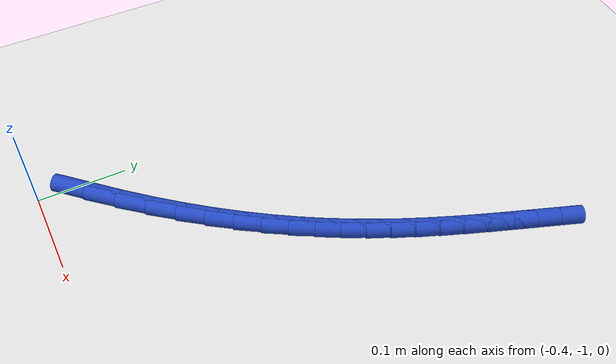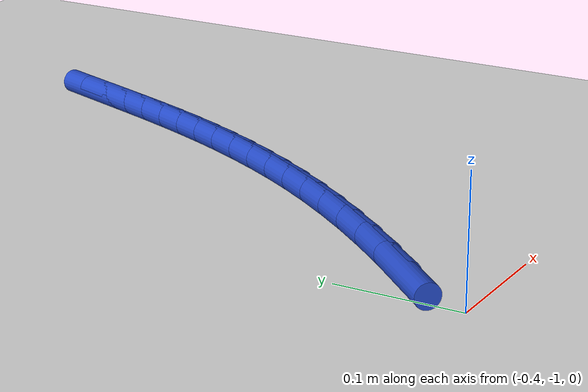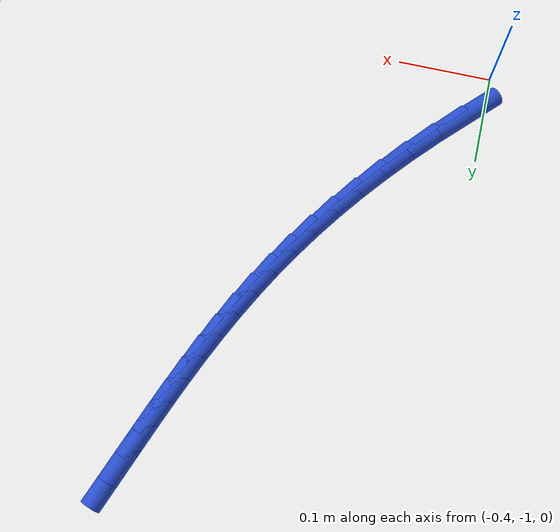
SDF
<sdf version="1.6">
 <world name="default">
  <model name="ground_plane">
   <static>1</static>
   <link name="link">
    <collision name="collision">
     <geometry><plane><normal>0 0 1</normal><size>100 100</size></plane></geometry>
     <surface><friction><ode><mu>100</mu><mu2>50</mu2></ode></friction></surface>
    </collision>
    <visual name="visual">
     <cast_shadows>0</cast_shadows>
     <geometry><plane><normal>0 0 1</normal><size>100 100</size></plane></geometry>
     <material>
      <script><uri>file://media/materials/scripts/gazebo.material</uri><name>Gazebo/WhiteGlow</name></script>
     </material>
    </visual>
   </link>
  </model>
  <model name="line">
   <link name="link_244">
    <pose>-0.38127407468557906 -0.9470976440967546 0.01 0 1.57 0.818177142924166</pose>
    <collision name="collision">
     <geometry><cylinder><radius>0.01</radius><length>0.08</length></cylinder></geometry>
    </collision>
    <visual name="visual">
     <material>
      <script><name>Gazebo/Blue</name><uri>file://media/materials/scripts/gazebo.material</uri></script>
     </material>
     <geometry><cylinder><radius>0.01</radius><length>0.08</length></cylinder></geometry>
    </visual>
   </link>
   <link name="link_245">
    <pose>-0.3543041924510514 -0.9182990739033332 0.01 0 1.57 0.8483068003723161</pose>
    <collision name="collision">
     <geometry><cylinder><radius>0.01</radius><length>0.08</length></cylinder></geometry>
    </collision>
    <visual name="visual">
     <material>
      <script><name>Gazebo/Blue</name><uri>file://media/materials/scripts/gazebo.material</uri></script>
     </material>
     <geometry><cylinder><radius>0.01</radius><length>0.08</length></cylinder></geometry>
    </visual>
   </link>
   <link name="link_246">
    <pose>-0.3295543982255059 -0.8902215971421984 0.01 0 1.57 0.8799076776530318</pose>
    <collision name="collision">
     <geometry><cylinder><radius>0.01</radius><length>0.08</length></cylinder></geometry>
    </collision>
    <visual name="visual">
     <material>
      <script><name>Gazebo/Blue</name><uri>file://media/materials/scripts/gazebo.material</uri></script>
     </material>
     <geometry><cylinder><radius>0.01</radius><length>0.08</length></cylinder></geometry>
    </visual>
   </link>
   <link name="link_247">
    <pose>-0.3069098679392918 -0.8628344704781907 0.01 0 1.57 0.9127254094345174</pose>
    <collision name="collision">
     <geometry><cylinder><radius>0.01</radius><length>0.08</length></cylinder></geometry>
    </collision>
    <visual name="visual">
     <material>
      <script><name>Gazebo/Blue</name><uri>file://media/materials/scripts/gazebo.material</uri></script>
     </material>
     <geometry><cylinder><radius>0.01</radius><length>0.08</length></cylinder></geometry>
    </visual>
   </link>
   <link name="link_248">
    <pose>-0.2862239692804425 -0.8360745688246263 0.01 0 1.57 0.9464484756648149</pose>
    <collision name="collision">
     <geometry><cylinder><radius>0.01</radius><length>0.08</length></cylinder></geometry>
    </collision>
    <visual name="visual">
     <material>
      <script><name>Gazebo/Blue</name><uri>file://media/materials/scripts/gazebo.material</uri></script>
     </material>
     <geometry><cylinder><radius>0.01</radius><length>0.08</length></cylinder></geometry>
    </visual>
   </link>
   <link name="link_249">
    <pose>-0.2673500699369911 -0.8098787670948203 0.01 0 1.57 0.9806776729120622</pose>
    <collision name="collision">
     <geometry><cylinder><radius>0.01</radius><length>0.08</length></cylinder></geometry>
    </collision>
    <visual name="visual">
     <material>
      <script><name>Gazebo/Blue</name><uri>file://media/materials/scripts/gazebo.material</uri></script>
     </material>
     <geometry><cylinder><radius>0.01</radius><length>0.08</length></cylinder></geometry>
    </visual>
   </link>
   <link name="link_250">
    <pose>-0.25014153759697083 -0.7841839402020883 0.01 0 1.57 1.0149295942831629</pose>
    <collision name="collision">
     <geometry><cylinder><radius>0.01</radius><length>0.08</length></cylinder></geometry>
    </collision>
    <visual name="visual">
     <material>
      <script><name>Gazebo/Blue</name><uri>file://media/materials/scripts/gazebo.material</uri></script>
     </material>
     <geometry><cylinder><radius>0.01</radius><length>0.08</length></cylinder></geometry>
    </visual>
   </link>
   <link name="link_251">
    <pose>-0.2344517399484151 -0.7589269630597463 0.01 0 1.57 1.0486479863932805</pose>
    <collision name="collision">
     <geometry><cylinder><radius>0.01</radius><length>0.08</length></cylinder></geometry>
    </collision>
    <visual name="visual">
     <material>
      <script><name>Gazebo/Blue</name><uri>file://media/materials/scripts/gazebo.material</uri></script>
     </material>
     <geometry><cylinder><radius>0.01</radius><length>0.08</length></cylinder></geometry>
    </visual>
   </link>
   <link name="link_252">
    <pose>-0.22013404467935668 -0.734044710581109 0.01 0 1.57 1.0812232095101966</pose>
    <collision name="collision">
     <geometry><cylinder><radius>0.01</radius><length>0.08</length></cylinder></geometry>
    </collision>
    <visual name="visual">
     <material>
      <script><name>Gazebo/Blue</name><uri>file://media/materials/scripts/gazebo.material</uri></script>
     </material>
     <geometry><cylinder><radius>0.01</radius><length>0.08</length></cylinder></geometry>
    </visual>
   </link>
   <link name="link_253">
    <pose>-0.2070418194778297 -0.7094740576794936 0.01 0 1.57 1.1120186843184348</pose>
    <collision name="collision">
     <geometry><cylinder><radius>0.01</radius><length>0.08</length></cylinder></geometry>
    </collision>
    <visual name="visual">
     <material>
      <script><name>Gazebo/Blue</name><uri>file://media/materials/scripts/gazebo.material</uri></script>
     </material>
     <geometry><cylinder><radius>0.01</radius><length>0.08</length></cylinder></geometry>
    </visual>
   </link>
   <link name="link_254">
    <pose>-0.195028432031867 -0.6851518792682147 0.01 0 1.57 1.140401897787164</pose>
    <collision name="collision">
     <geometry><cylinder><radius>0.01</radius><length>0.08</length></cylinder></geometry>
    </collision>
    <visual name="visual">
     <material>
      <script><name>Gazebo/Blue</name><uri>file://media/materials/scripts/gazebo.material</uri></script>
     </material>
     <geometry><cylinder><radius>0.01</radius><length>0.08</length></cylinder></geometry>
    </visual>
   </link>
   <link name="link_255">
    <pose>-0.18394725002950188 -0.6610150502605883 0.01 0 1.57 1.1657766539662082</pose>
    <collision name="collision">
     <geometry><cylinder><radius>0.01</radius><length>0.08</length></cylinder></geometry>
    </collision>
    <visual name="visual">
     <material>
      <script><name>Gazebo/Blue</name><uri>file://media/materials/scripts/gazebo.material</uri></script>
     </material>
     <geometry><cylinder><radius>0.01</radius><length>0.08</length></cylinder></geometry>
    </visual>
   </link>
   <link name="link_256">
    <pose>-0.17365164115876752 -0.6370004455699303 0.01 0 1.57 1.187613077628089</pose>
    <collision name="collision">
     <geometry><cylinder><radius>0.01</radius><length>0.08</length></cylinder></geometry>
    </collision>
    <visual name="visual">
     <material>
      <script><name>Gazebo/Blue</name><uri>file://media/materials/scripts/gazebo.material</uri></script>
     </material>
     <geometry><cylinder><radius>0.01</radius><length>0.08</length></cylinder></geometry>
    </visual>
   </link>
   <link name="link_257">
    <pose>-0.16399497310769726 -0.6130449401095553 0.01 0 1.57 1.205472450188723</pose>
    <collision name="collision">
     <geometry><cylinder><radius>0.01</radius><length>0.08</length></cylinder></geometry>
    </collision>
    <visual name="visual">
     <material>
      <script><name>Gazebo/Blue</name><uri>file://media/materials/scripts/gazebo.material</uri></script>
     </material>
     <geometry><cylinder><radius>0.01</radius><length>0.08</length></cylinder></geometry>
    </visual>
   </link>
   <link name="link_258">
    <pose>-0.1548306135643243 -0.5890854087927799 0.01 0 1.57 1.2190250549147572</pose>
    <collision name="collision">
     <geometry><cylinder><radius>0.01</radius><length>0.08</length></cylinder></geometry>
    </collision>
    <visual name="visual">
     <material>
      <script><name>Gazebo/Blue</name><uri>file://media/materials/scripts/gazebo.material</uri></script>
     </material>
     <geometry><cylinder><radius>0.01</radius><length>0.08</length></cylinder></geometry>
    </visual>
   </link>
   <link name="link_259">
    <pose>-0.14601193021668196 -0.5650587265329196 0.01 0 1.57 1.2280604540753681</pose>
    <collision name="collision">
     <geometry><cylinder><radius>0.01</radius><length>0.08</length></cylinder></geometry>
    </collision>
    <visual name="visual">
     <material>
      <script><name>Gazebo/Blue</name><uri>file://media/materials/scripts/gazebo.material</uri></script>
     </material>
     <geometry><cylinder><radius>0.01</radius><length>0.08</length></cylinder></geometry>
    </visual>
   </link>
   <link name="link_260">
    <pose>-0.1373922907528035 -0.5409017682432896 0.01 0 1.57 1.2324906528555413</pose>
    <collision name="collision">
     <geometry><cylinder><radius>0.01</radius><length>0.08</length></cylinder></geometry>
    </collision>
    <visual name="visual">
     <material>
      <script><name>Gazebo/Blue</name><uri>file://media/materials/scripts/gazebo.material</uri></script>
     </material>
     <geometry><cylinder><radius>0.01</radius><length>0.08</length></cylinder></geometry>
    </visual>
   </link>
   <link name="link_261">
    <pose>-0.12882506286072193 -0.5165514088372052 0.01 0 1.57 1.2323472140106122</pose>
    <collision name="collision">
     <geometry><cylinder><radius>0.01</radius><length>0.08</length></cylinder></geometry>
    </collision>
    <visual name="visual">
     <material>
      <script><name>Gazebo/Blue</name><uri>file://media/materials/scripts/gazebo.material</uri></script>
     </material>
     <geometry><cylinder><radius>0.01</radius><length>0.08</length></cylinder></geometry>
    </visual>
   </link>
  </model>
 </world>
</sdf>
